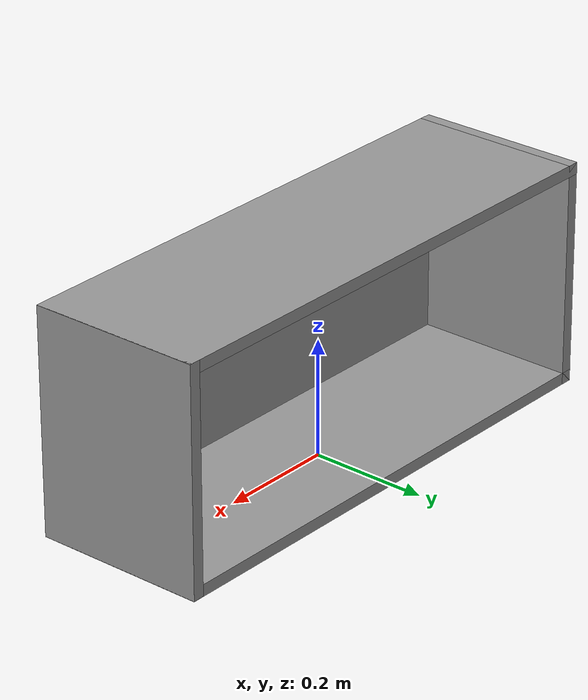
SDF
<?xml version='1.0'?>
<sdf version='1.6'>
  <model name='Wall_Cabinet_36x15W'>
     <link name='Wall_0'>
 	<pose frame=''>0 0 0.01 0 0 0</pose>
	<inertial>
	  <mass>1.9796</mass>
	   <inertia>
	     <ixx>0.0145</ixx>
	     <iyy>0.1511</iyy>
	     <izz>0.1367</izz>
    	     <ixy>0</ixy>
	     <ixz>0</ixz>
	     <iyz>0</iyz>
	   </inertia>
	</inertial>
      <collision name='Wall_0_Collision'>
        <geometry>
          <box>
            <size>0.91 0.296 0.02</size>
          </box>
        </geometry>
      </collision>
      <visual name='Wall_0_Visual'>
          <geometry>
          <box>
            <size>0.91 0.296 0.02</size>
          </box>
        </geometry>
        <material>
          <script>
            <uri>file://media/materials/scripts/gazebo.material</uri>
            <name>Gazebo/Grey</name>
          </script>
          <ambient>1 1 1 1</ambient>
        </material>
      </visual>
    </link>

     <joint type="fixed" name="0_2">
      <pose frame=''>-0.455 0 0 0 0 0</pose>
         <parent>Wall_2</parent>
  	 <child>Wall_0</child>
	 <axis>
	   <xyz>0 0 1</xyz>
	 </axis>
       </joint>
   <joint type="fixed" name="0_4">
          <pose frame=''>0.455 0 0 0 0 0</pose>
         <parent>Wall_4</parent>
  	 <child>Wall_0</child>
	 <axis>
	   <xyz>0 0 1</xyz>
	 </axis>
       </joint>

   <joint type="fixed" name="0_8">
      <pose frame=''>0 -0.148 0 0 0 0</pose>
         <parent>Wall_8</parent>
  	 <child>Wall_0</child>
	 <axis>
	   <xyz>0 0 1</xyz>
	 </axis>
       </joint>

    <link name='Wall_2'>
     <pose frame=''>-0.445 0 0.192 0 0 0</pose>
	<inertial>
	  <mass>0.8353</mass>
	   <inertia>
	     <ixx>0.0061</ixx>
	     <iyy>0.0164</iyy>
	     <izz>0.0103</izz>
    	     <ixy>0</ixy>
	     <ixz>0</ixz>
	     <iyz>0</iyz>
	   </inertia>
	</inertial>
      <collision name='Wall_2_Collision'>
        <geometry>
          <box>
            <size> 0.02 0.296 0.384</size>
          </box>
        </geometry>
       </collision>
      <visual name='Wall_2_Visual'>
         <geometry>
          <box>
            <size>0.02 0.296 0.384</size>
          </box>
        </geometry>
        <material>
          <script>
            <uri>file://media/materials/scripts/gazebo.material</uri>
            <name>Gazebo/Grey</name>
          </script>
          <ambient>1 1 1 1</ambient>
        </material>
      </visual>
    </link>

    <link name='Wall_4'>
     <pose frame=''>0.445 0 0.192 0 0 0</pose>
	<inertial>
	  <mass>0.8353</mass>
	   <inertia>
	     <ixx>0.0061</ixx>
	     <iyy>0.0164</iyy>
	     <izz>0.0103</izz>
    	     <ixy>0</ixy>
	     <ixz>0</ixz>
	     <iyz>0</iyz>
	   </inertia>
	</inertial>
      <collision name='Wall_4_Collision'>
        <geometry>
          <box>
            <size> 0.02 0.296 0.384</size>
          </box>
        </geometry>
       </collision>
      <visual name='Wall_4_Visual'>
         <geometry>
          <box>
            <size>0.02 0.296 0.384</size>
          </box>
        </geometry>
        <material>
          <script>
            <uri>file://media/materials/scripts/gazebo.material</uri>
            <name>Gazebo/Grey</name>
          </script>
          <ambient>1 1 1 1</ambient>
        </material>
      </visual>
     </link>

    <link name='Wall_6'>
  <pose frame=''>0 0 0.374 0 -0 0</pose>

	<inertial>
	  <mass>1.9796</mass>
	   <inertia>
	     <ixx>0.0145</ixx>
	     <iyy>0.1511</iyy>
	     <izz>0.1367</izz>
    	     <ixy>0</ixy>
	     <ixz>0</ixz>
	     <iyz>0</iyz>
	   </inertia>
	</inertial>
      <collision name='Wall_6_Collision'>
        <geometry>
          <box>
            <size>0.91 0.296 0.02</size>
          </box>
        </geometry>
       </collision>
      <visual name='Wall_6_Visual'>
       <geometry>
          <box>
            <size>0.91 0.296 0.02</size>
          </box>
        </geometry>
        <material>
          <script>
            <uri>file://media/materials/scripts/gazebo.material</uri>
            <name>Gazebo/Grey</name>
          </script>
          <ambient>1 1 1 1</ambient>
        </material>
      </visual>
    </link>

     <joint type="fixed" name="6_2">
      <pose frame=''>-0.455 0 0 0 0 0</pose>
         <parent>Wall_2</parent>
  	 <child>Wall_6</child>
	 <axis>
	   <xyz>0 0 1</xyz>
	 </axis>
       </joint>
   <joint type="fixed" name="6_4">
          <pose frame=''>0.455 0 0 0 0 0</pose>
         <parent>Wall_4</parent>
  	 <child>Wall_6</child>
	 <axis>
	   <xyz>0 0 1</xyz>
	 </axis>
       </joint>

   <joint type="fixed" name="6_8">
      <pose frame=''>0 -0.148 0 0 0 0</pose>
         <parent>Wall_8</parent>
  	 <child>Wall_6</child>
	 <axis>
	   <xyz>0 0 1</xyz>
	 </axis>
       </joint>

    <link name='Wall_8'>
   <pose frame=''>0 -0.138 0.190 0 0 0</pose>
	<inertial>
	  <mass>2.5302</mass>
	   <inertia>
	     <ixx>0.0305</ixx>
	     <iyy>0.1732</iyy>
	     <izz>0.2035</izz>
    	     <ixy>0</ixy>
	     <ixz>0</ixz>
	     <iyz>0</iyz>
	   </inertia>
	</inertial>
      <collision name='Wall_8_Collision'>
        <geometry>
          <box>
            <size>0.906 0.02 0.38 </size>
          </box>
        </geometry>
       </collision>
      <visual name='Wall_8_Visual'>
        <geometry>
          <box>
            <size>0.906 0.02 0.38</size>
          </box>
        </geometry>
        <material>
          <script>
            <uri>file://media/materials/scripts/gazebo.material</uri>
            <name>Gazebo/Grey</name>
          </script>
          <ambient>1 1 1 1</ambient>
        </material>
      </visual>
      </link>

   <joint type="fixed" name="8_2">
          <pose frame=''>-0.453 0 0 0 0 0</pose>
         <parent>Wall_2</parent>
  	 <child>Wall_8</child>
	 <axis>
	   <xyz>0 1 0</xyz>
	 </axis>
       </joint>

   <joint type="fixed" name="8_4">
      <pose frame=''>0.453 0 0 0 0 0</pose>
         <parent>Wall_4</parent>
  	 <child>Wall_8</child>
	 <axis>
	   <xyz>0 1 0</xyz>
	 </axis>
       </joint>

    <static>1</static>
  </model>
</sdf>
